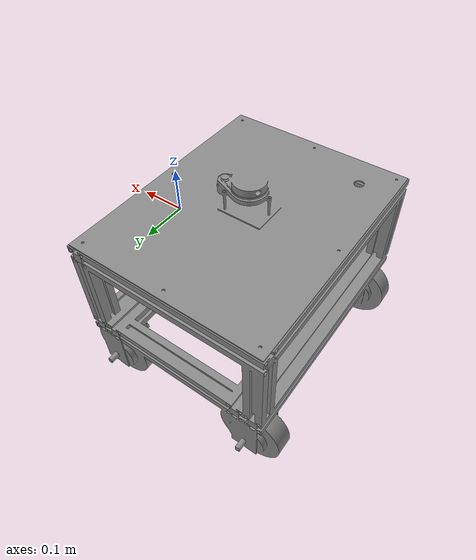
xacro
<?xml version="1.0"?>
<robot name="my_robot" xmlns:xacro="http://www.ros.org/wiki/xacro">

  <xacro:property name="mesh_x" value="-0.21"/>
  <xacro:property name="mesh_y" value="0.2625"/>
  <xacro:property name="mesh_z" value="0.0"/>
  <xacro:property name="mesh_roll" value="0.0"/>
  <xacro:property name="mesh_pitch" value="0.0"/>
  <xacro:property name="mesh_yaw" value="-1.5708"/>

  <material name="gray">
    <color rgba="0.55 0.55 0.55 1"/>
  </material>

  <!-- 차체 기준 프레임 -->
  <link name="base_link">
    <visual>
      <origin xyz="${mesh_x} ${mesh_y} ${mesh_z}" rpy="${mesh_roll} ${mesh_pitch} ${mesh_yaw}"/>
      <geometry>
        <mesh filename="package://my_car_package/meshes/simple_car_frame.stl"
              scale="0.001 0.001 0.001"/>
      </geometry>
      <material name="gray"/>
    </visual>
  </link>

  <!-- LiDAR 프레임 -->
  <link name="laser_frame"/>

  <joint name="base_to_lidar" type="fixed">
    <parent link="base_link"/>
    <child link="laser_frame"/>
    <origin xyz="0.0 -0.0531 0.33635" rpy="3.1416 0 0"/>
  </joint>

  <!-- T265 프레임 -->
  <link name="camera_link"/>

  <joint name="base_to_t265" type="fixed">
    <parent link="camera_link"/>
    <child link="base_link"/>
    <origin xyz="-0.1825 0.0 -0.152" rpy="0.0 0.0 0.0"/>
  </joint>

</robot>
